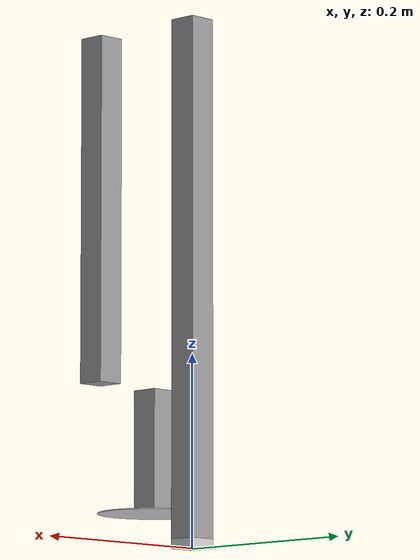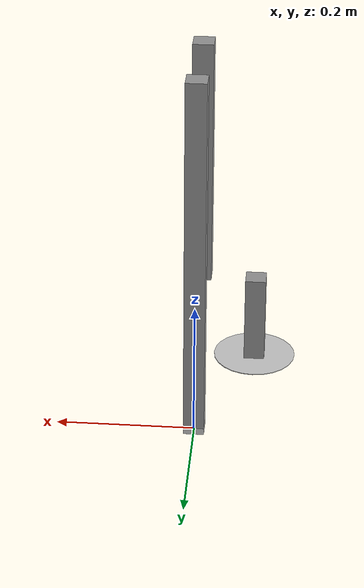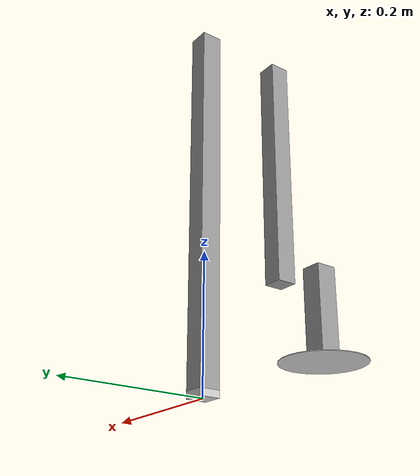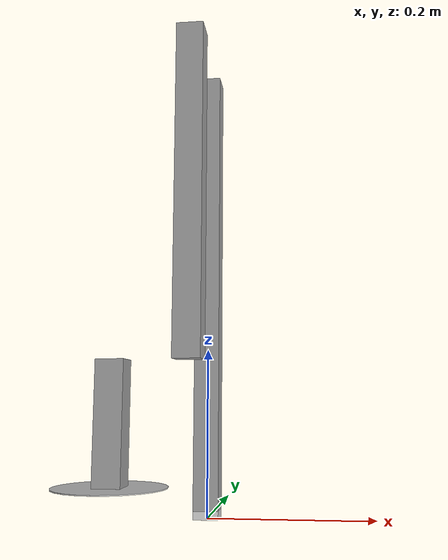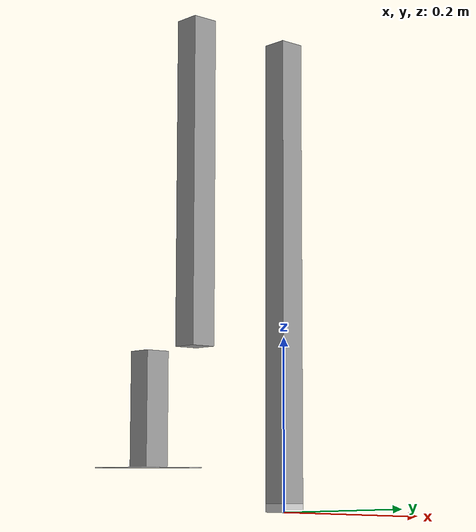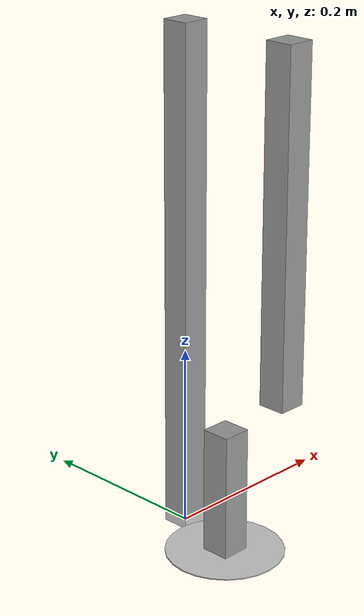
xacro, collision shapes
<robot xmlns:sensor="http://playerstage.sourceforge.net/gazebo/xmlschema/#sensor"
       xmlns:controller="http://playerstage.sourceforge.net/gazebo/xmlschema/#controller"
       xmlns:interface="http://playerstage.sourceforge.net/gazebo/xmlschema/#interface"
       xmlns:xacro="http://www.ros.org/wiki/xacro"
       name="sr_arm_motor">

  <include filename="$(find sr_hand)/model/materials.urdf.xacro" />
  <include filename="$(find sr_hand)/model/arm_urdf/full_arm_motor.urdf.xacro" />
  <include filename="$(find sr_hand)/model/gazebo/gazebo.urdf.xacro" />

  <xacro:sr_arm_motor>
  </xacro:sr_arm_motor>

</robot>

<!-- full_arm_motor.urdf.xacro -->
<robot xmlns:sensor="http://playerstage.sourceforge.net/gazebo/xmlschema/#sensor"
       xmlns:controller="http://playerstage.sourceforge.net/gazebo/xmlschema/#controller"
       xmlns:interface="http://playerstage.sourceforge.net/gazebo/xmlschema/#interface"
       xmlns:xacro="http://www.ros.org/wiki/xacro"
       name="full_arm_motor">

  <include filename="$(find sr_hand)/model/arm_urdf/base/shadowarm_base.urdf.xacro" />
  <include filename="$(find sr_hand)/model/arm_urdf/trunk/shadowarm_trunk.urdf.xacro" />
  <include filename="$(find sr_hand)/model/arm_urdf/upper_arm/shadowarm_upperarm.urdf.xacro" />
  <include filename="$(find sr_hand)/model/arm_urdf/lower_arm/shadowarm_lowerarm.urdf.xacro" />
  <include filename="$(find sr_hand)/model/arm_urdf/hand_support/shadowarm_handsupport_motor.urdf.xacro" />

  <xacro:macro name="sr_arm_motor">

    <xacro:shadowarm_base>
    </xacro:shadowarm_base>

    <xacro:shadowarm_trunk parent="shadowarm_base">
    </xacro:shadowarm_trunk>

    <xacro:shadowarm_upperarm parent="shadowarm_trunk">
    </xacro:shadowarm_upperarm>

    <xacro:shadowarm_lowerarm parent="shadowarm_upperarm">
    </xacro:shadowarm_lowerarm>

    <xacro:shadowarm_handsupport_motor parent="shadowarm_lowerarm">
    </xacro:shadowarm_handsupport_motor>

  </xacro:macro>

</robot>

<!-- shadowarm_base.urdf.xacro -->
<robot xmlns:xacro="http://www.ros.org/wiki/xacro">

<property name="M_PI" value="3.1415926535897931" />

<xacro:macro name="shadowarm_base">
  <link name="shadowarm_base">
    <inertial>
      <origin xyz="0 0 0" rpy="0 0 0"/>
      <mass value="0.4" />
      <inertia  ixx="1.0" ixy="0.0"  ixz="0.0"  iyy="0.0"  iyz="0.0"  izz="0.0" />
    </inertial>
    <visual>
      <origin xyz="0 0 0.005" rpy="${M_PI/2} 0 0"/>
      <geometry name="shadowarm_base_visual">
        <mesh filename="package://sr_hand/model/meshes/arm/arm_base.mesh" scale="0.001 0.001 0.001" />
      </geometry>
      <material name="LightGrey" />
    </visual>
    <collision>
      <origin xyz="0 0 0.005" rpy="0 0 0" />
      <geometry name="shadowarm_base_collision">
        <box size="0.03 0.03 0.01"/>
      </geometry>
    </collision>
  </link>
  <gazebo reference="shadowarm_base">
    <material>Gazebo/Grey</material>
    <selfCollide>true</selfCollide>
  </gazebo>
</xacro:macro>

</robot>

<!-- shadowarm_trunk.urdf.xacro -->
<robot xmlns:xacro="http://www.ros.org/wiki/xacro">

  <include filename="$(find sr_hand)/model/arm_urdf/trunk/shadowarm_trunk.transmission.xacro" />

  <xacro:macro name="shadowarm_trunk" params="parent">

    <link name="shadowarm_trunk">
	<inertial>
	  <origin xyz="0 0 0.27025" rpy="0 0 0" />
	  <mass value="5" />
	  <inertia  ixx="1.0" ixy="0.0"  ixz="0.0"  iyy="0.0"  iyz="0.0"  izz="0.0" />
	</inertial>
	<visual>
	  <origin xyz="0 0 0.0165" rpy="${M_PI/2} ${M_PI} ${M_PI/2}" />
	  <geometry name="shadowarm_trunk_visual">
	    <mesh filename="package://sr_hand/model/meshes/arm/arm_trunk.mesh" scale="0.001 0.001 0.001" />
	  </geometry>
	  <material name="Grey" />
	</visual>
	<collision>
	  <origin xyz="0 0 0.27025" rpy="0 0 0"/>
	  <geometry name="shadowarm_trunk_collision">
	    <box size="0.03 0.03 0.5405"/>
	  </geometry>
	</collision>
      </link>
      <gazebo reference="shadowarm_trunk">
	<material>Gazebo/Grey</material>
	<selfCollide>true</selfCollide>
      </gazebo>

    <joint name="ShoulderJRotate" type="revolute">
      <parent link="${parent}"/>
      <child link="shadowarm_trunk"/>
      <origin xyz="0 0 0.01" rpy="0 0 0" />
      <axis xyz="0 0 1" />
      <limit lower="-${M_PI/4}" upper="${M_PI/2}"
      effort="10" velocity="1.0"/>
      <dynamics damping="200.5"/>
    </joint>

    <xacro:shadowarm_trunk_transmission />

  </xacro:macro>

</robot>

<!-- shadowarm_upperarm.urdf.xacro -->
<robot xmlns:xacro="http://www.ros.org/wiki/xacro">

  <include filename="$(find sr_hand)/model/arm_urdf/upper_arm/shadowarm_upperarm.transmission.xacro" />

  <xacro:macro name="shadowarm_upperarm" params="parent">

    <link name="shadowarm_upperarm">
      <inertial>
	<origin xyz="0 -0.067 -0.1845" rpy="0 0 0" />
	<mass value="2" />
	<inertia  ixx="1.0" ixy="0.0"  ixz="0.0"  iyy="0.0"  iyz="0.0"  izz="0.0" />
      </inertial>
      <visual>
	<origin xyz="0 0.067 0" rpy="0 0 -${M_PI/2}" />
	<geometry name="shadowarm_upperarm_visual">
	  <mesh filename="package://sr_hand/model/meshes/arm/upper_arm.mesh" scale="0.001 0.001 0.001" />
	</geometry>
	<material name="Grey" />
      </visual>
      <collision>
	<origin xyz="0 0 0.1845" rpy="0 -${M_PI} 0"/>
	<geometry name="shadowarm_upperarm_collision">
	  <box size="0.03 0.03 0.369"/>
	</geometry>
      </collision>
    </link>
    <gazebo reference="shadowarm_upperarm">
      <material>Gazebo/Grey</material>
      <selfCollide>true</selfCollide>
    </gazebo>

    <joint name="ShoulderJSwing" type="revolute">
      <parent link="${parent}"/>
      <child link="shadowarm_upperarm"/>
      <origin xyz="0 -0.134 0.5405" rpy="0 -${M_PI} 0" />
      <axis xyz="0 -1 0" />
      <limit lower="0" upper="${M_PI/2}" effort="10" velocity="1.0"/>
      <dynamics damping="50.5"/>
    </joint>

    <xacro:shadowarm_upperarm_transmission />

  </xacro:macro>

</robot>

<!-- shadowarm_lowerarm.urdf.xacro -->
<robot xmlns:xacro="http://www.ros.org/wiki/xacro">

  <include filename="$(find sr_hand)/model/arm_urdf/lower_arm/shadowarm_lowerarm.transmission.xacro" />

  <xacro:macro name="shadowarm_lowerarm" params="parent">

    <link name="shadowarm_lowerarm">
	<inertial>
	  <origin xyz="0.08 0 0.0655" rpy="0 0 0" />
	  <mass value="1.7" />
	  <inertia  ixx="1.0" ixy="0.0"  ixz="0.0"  iyy="0.0"  iyz="0.0"  izz="0.0" />
	</inertial>
	<visual>
	  <origin xyz="0.03 0 0.036" rpy="${M_PI} ${0.5-M_PI/2} 0"/>
	  <geometry name="shadowarm_lowerarm_visual">
	    <mesh filename="package://sr_hand/model/meshes/arm/elbow_flex.mesh" scale="0.001 0.001 0.001" />
	  </geometry>
	  <material name="Grey" />
	</visual>
	<collision>
	  <origin xyz="0.08 0 0.0655" rpy="0 0 0"/>
	  <geometry name="shadowarm_lowerarm_collision">
	    <box size="0.03 0.03 0.131"/>
	  </geometry>
	</collision>
    </link>
    <gazebo reference="shadowarm_lowerarm">
	<material>Gazebo/Grey</material>
	<selfCollide>true</selfCollide>
    </gazebo>

    <joint name="ElbowJSwing" type="revolute">
      <parent link="${parent}"/>
      <child link="shadowarm_lowerarm"/>
      <origin xyz="0 0 0.369" rpy="0 0 0" />
      <axis xyz="0 -1 0" />
      <limit lower="0" upper="2.09439510239"
      effort="10" velocity="1.0"/>
      <dynamics damping="50.5"/>
    </joint>

    <xacro:shadowarm_lowerarm_transmission />

  </xacro:macro>

</robot>

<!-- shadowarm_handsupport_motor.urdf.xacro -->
<robot xmlns:xacro="http://www.ros.org/wiki/xacro">

  <include filename="$(find sr_hand)/model/arm_urdf/hand_support/shadowarm_handsupport_motor.transmission.xacro" />

  <xacro:macro name="shadowarm_handsupport_motor" params="parent">

    <link name="shadowarm_handsupport_motor">
      <inertial>
	<origin xyz="0 0 0" rpy="0 0 0" />
	<mass value="0.75" />
	<inertia  ixx="1.0" ixy="0.0"  ixz="0.0"  iyy="0.0"  iyz="0.0"  izz="0.0" />
      </inertial>
      <visual>
	<origin xyz="0 0 -0.04" rpy="${M_PI/2} 0 0"/>
	<geometry name="shadowarm_handsupport_visual">
	  <mesh filename="package://sr_hand/model/meshes/arm/elbow_rotate_motor.mesh" scale="0.001 0.001 0.001" />
	</geometry>
	<material name="LightGrey" />
      </visual>
      <collision>
	<origin xyz="0 0 0" rpy="0 0 0"/>
	<geometry name="shadowarm_handsupport_collision">
	  <cylinder radius="0.06" length="0.001"/>
	</geometry>
      </collision>
    </link>
    <gazebo reference="shadowarm_handsupport_motor">
      <material>Gazebo/Grey</material>
      <selfCollide>true</selfCollide>
    </gazebo>

    <joint name="forearm_rotation" type="revolute">
      <parent link="${parent}"/>
      <child link="shadowarm_handsupport_motor"/>
      <origin xyz="0.08 0 0.131" rpy="0 0 0" />
      <axis xyz="0 0 -1" />
      <limit lower="-${M_PI/2}" upper="${M_PI/2}"
      effort="10" velocity="1.0"/>
      <dynamics damping="10.5"/>
    </joint>

    <xacro:shadowarm_handsupport_motor_transmission />

  </xacro:macro>

</robot>
